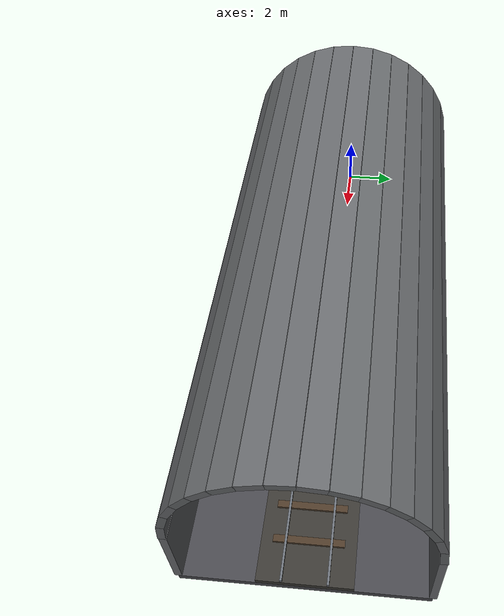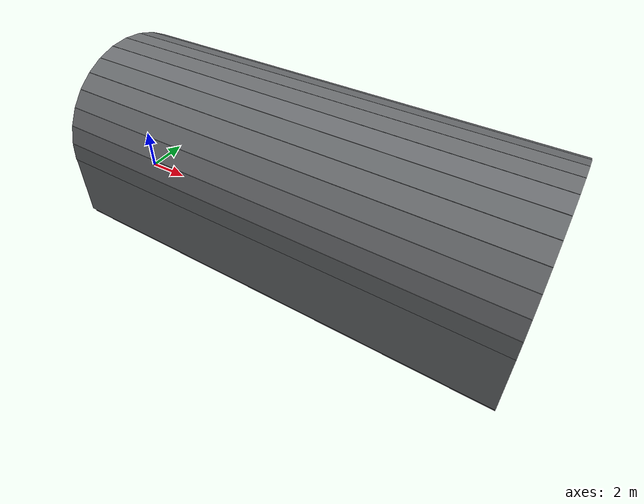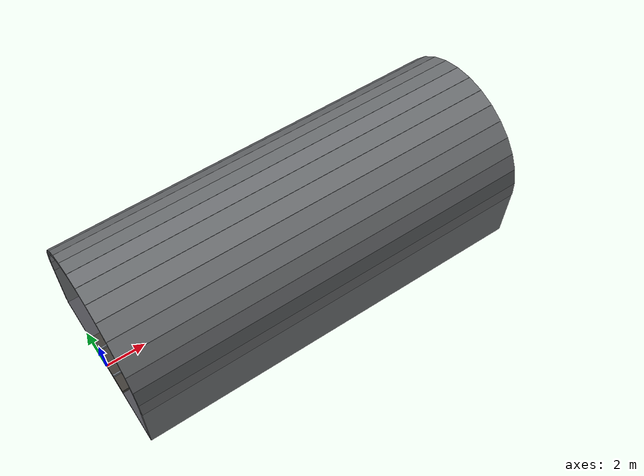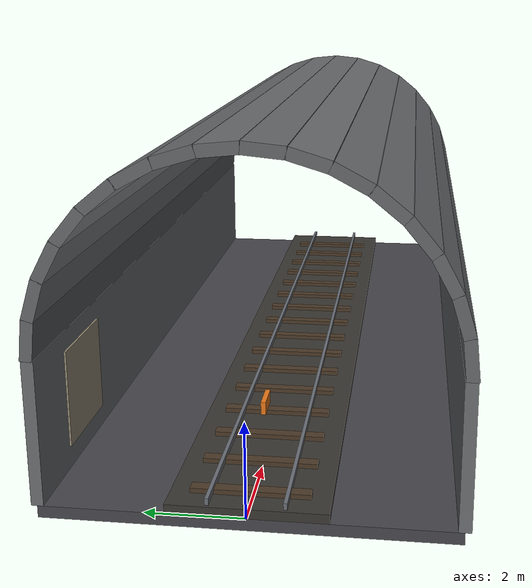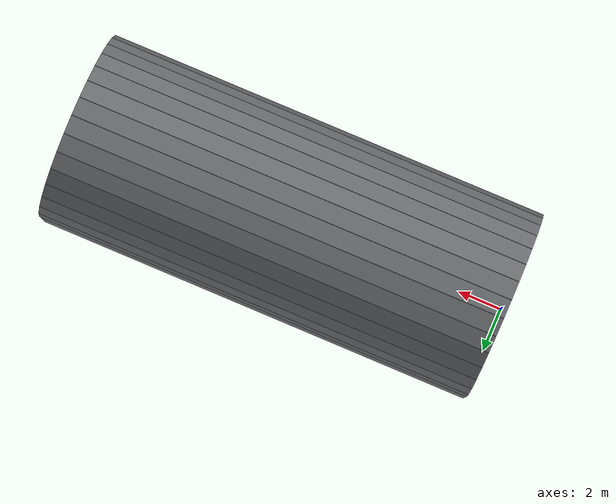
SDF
<?xml version="1.0" ?>
<sdf version="1.9">
  <world name="subway_tunnel_hil">
    <gravity>0 0 -9.81</gravity>
    <physics name="1ms" type="ignored"><max_step_size>0.001</max_step_size><real_time_factor>1.0</real_time_factor></physics>
    <plugin filename="gz-sim-physics-system" name="gz::sim::systems::Physics"/>
    <plugin filename="gz-sim-user-commands-system" name="gz::sim::systems::UserCommands"/>
    <plugin filename="gz-sim-scene-broadcaster-system" name="gz::sim::systems::SceneBroadcaster"/>
    <plugin filename="gz-sim-sensors-system" name="gz::sim::systems::Sensors"><render_engine>ogre2</render_engine></plugin>
    <scene><ambient>0.08 0.08 0.09 1</ambient><background>0.015 0.018 0.022 1</background><shadows>true</shadows></scene>

    <!-- 8 m clear arch span, 4 m radius, 3 m side walls, 20 m length. -->
    <model name="subway_tunnel_shell">
      <static>true</static>
      <link name="floor"><pose>10 0 -0.125 0 0 0</pose><collision name="collision"><geometry><box><size>20 8.25 0.25</size></box></geometry></collision><visual name="visual"><geometry><box><size>20 8.25 0.25</size></box></geometry><material><ambient>0.20 0.20 0.21 1</ambient><diffuse>0.28 0.28 0.30 1</diffuse></material></visual></link>
      <link name="right_straight_wall"><pose>10 4.125 1.5 0 0 0</pose><collision name="collision"><geometry><box><size>20 0.25 3.0</size></box></geometry></collision><visual name="visual"><geometry><box><size>20 0.25 3.0</size></box></geometry><material><ambient>0.34 0.35 0.36 1</ambient><diffuse>0.43 0.44 0.45 1</diffuse></material></visual></link>
      <link name="left_straight_wall"><pose>10 -4.125 1.5 0 0 0</pose><collision name="collision"><geometry><box><size>20 0.25 3.0</size></box></geometry></collision><visual name="visual"><geometry><box><size>20 0.25 3.0</size></box></geometry><material><ambient>0.34 0.35 0.36 1</ambient><diffuse>0.43 0.44 0.45 1</diffuse></material></visual></link>

      <!-- Sixteen collision-backed facets approximate the concrete arch. -->
      <link name="arch_01"><pose>10 4.1051 3.4043 1.668971 0 0</pose><collision name="collision"><geometry><box><size>20 0.82 0.25</size></box></geometry></collision><visual name="visual"><geometry><box><size>20 0.82 0.25</size></box></geometry><material><ambient>0.31 0.32 0.33 1</ambient><diffuse>0.40 0.41 0.42 1</diffuse></material></visual></link>
      <link name="arch_02"><pose>10 3.9474 4.1974 1.865321 0 0</pose><collision name="collision"><geometry><box><size>20 0.82 0.25</size></box></geometry></collision><visual name="visual"><geometry><box><size>20 0.82 0.25</size></box></geometry><material><ambient>0.32 0.33 0.34 1</ambient><diffuse>0.41 0.42 0.43 1</diffuse></material></visual></link>
      <link name="arch_03"><pose>10 3.6379 4.9445 2.061670 0 0</pose><collision name="collision"><geometry><box><size>20 0.82 0.25</size></box></geometry></collision><visual name="visual"><geometry><box><size>20 0.82 0.25</size></box></geometry><material><ambient>0.31 0.32 0.33 1</ambient><diffuse>0.40 0.41 0.42 1</diffuse></material></visual></link>
      <link name="arch_04"><pose>10 3.1887 5.6169 2.258020 0 0</pose><collision name="collision"><geometry><box><size>20 0.82 0.25</size></box></geometry></collision><visual name="visual"><geometry><box><size>20 0.82 0.25</size></box></geometry><material><ambient>0.32 0.33 0.34 1</ambient><diffuse>0.41 0.42 0.43 1</diffuse></material></visual></link>
      <link name="arch_05"><pose>10 2.6169 6.1887 2.454369 0 0</pose><collision name="collision"><geometry><box><size>20 0.82 0.25</size></box></geometry></collision><visual name="visual"><geometry><box><size>20 0.82 0.25</size></box></geometry><material><ambient>0.31 0.32 0.33 1</ambient><diffuse>0.40 0.41 0.42 1</diffuse></material></visual></link>
      <link name="arch_06"><pose>10 1.9445 6.6379 2.650719 0 0</pose><collision name="collision"><geometry><box><size>20 0.82 0.25</size></box></geometry></collision><visual name="visual"><geometry><box><size>20 0.82 0.25</size></box></geometry><material><ambient>0.32 0.33 0.34 1</ambient><diffuse>0.41 0.42 0.43 1</diffuse></material></visual></link>
      <link name="arch_07"><pose>10 1.1974 6.9474 2.847068 0 0</pose><collision name="collision"><geometry><box><size>20 0.82 0.25</size></box></geometry></collision><visual name="visual"><geometry><box><size>20 0.82 0.25</size></box></geometry><material><ambient>0.31 0.32 0.33 1</ambient><diffuse>0.40 0.41 0.42 1</diffuse></material></visual></link>
      <link name="arch_08"><pose>10 0.4043 7.1051 3.043418 0 0</pose><collision name="collision"><geometry><box><size>20 0.82 0.25</size></box></geometry></collision><visual name="visual"><geometry><box><size>20 0.82 0.25</size></box></geometry><material><ambient>0.32 0.33 0.34 1</ambient><diffuse>0.41 0.42 0.43 1</diffuse></material></visual></link>
      <link name="arch_09"><pose>10 -0.4043 7.1051 3.239767 0 0</pose><collision name="collision"><geometry><box><size>20 0.82 0.25</size></box></geometry></collision><visual name="visual"><geometry><box><size>20 0.82 0.25</size></box></geometry><material><ambient>0.31 0.32 0.33 1</ambient><diffuse>0.40 0.41 0.42 1</diffuse></material></visual></link>
      <link name="arch_10"><pose>10 -1.1974 6.9474 3.436117 0 0</pose><collision name="collision"><geometry><box><size>20 0.82 0.25</size></box></geometry></collision><visual name="visual"><geometry><box><size>20 0.82 0.25</size></box></geometry><material><ambient>0.32 0.33 0.34 1</ambient><diffuse>0.41 0.42 0.43 1</diffuse></material></visual></link>
      <link name="arch_11"><pose>10 -1.9445 6.6379 3.632467 0 0</pose><collision name="collision"><geometry><box><size>20 0.82 0.25</size></box></geometry></collision><visual name="visual"><geometry><box><size>20 0.82 0.25</size></box></geometry><material><ambient>0.31 0.32 0.33 1</ambient><diffuse>0.40 0.41 0.42 1</diffuse></material></visual></link>
      <link name="arch_12"><pose>10 -2.6169 6.1887 3.828816 0 0</pose><collision name="collision"><geometry><box><size>20 0.82 0.25</size></box></geometry></collision><visual name="visual"><geometry><box><size>20 0.82 0.25</size></box></geometry><material><ambient>0.32 0.33 0.34 1</ambient><diffuse>0.41 0.42 0.43 1</diffuse></material></visual></link>
      <link name="arch_13"><pose>10 -3.1887 5.6169 4.025166 0 0</pose><collision name="collision"><geometry><box><size>20 0.82 0.25</size></box></geometry></collision><visual name="visual"><geometry><box><size>20 0.82 0.25</size></box></geometry><material><ambient>0.31 0.32 0.33 1</ambient><diffuse>0.40 0.41 0.42 1</diffuse></material></visual></link>
      <link name="arch_14"><pose>10 -3.6379 4.9445 4.221515 0 0</pose><collision name="collision"><geometry><box><size>20 0.82 0.25</size></box></geometry></collision><visual name="visual"><geometry><box><size>20 0.82 0.25</size></box></geometry><material><ambient>0.32 0.33 0.34 1</ambient><diffuse>0.41 0.42 0.43 1</diffuse></material></visual></link>
      <link name="arch_15"><pose>10 -3.9474 4.1974 4.417865 0 0</pose><collision name="collision"><geometry><box><size>20 0.82 0.25</size></box></geometry></collision><visual name="visual"><geometry><box><size>20 0.82 0.25</size></box></geometry><material><ambient>0.31 0.32 0.33 1</ambient><diffuse>0.40 0.41 0.42 1</diffuse></material></visual></link>
      <link name="arch_16"><pose>10 -4.1051 3.4043 4.614214 0 0</pose><collision name="collision"><geometry><box><size>20 0.82 0.25</size></box></geometry></collision><visual name="visual"><geometry><box><size>20 0.82 0.25</size></box></geometry><material><ambient>0.32 0.33 0.34 1</ambient><diffuse>0.41 0.42 0.43 1</diffuse></material></visual></link>

      <!-- Flush wall target for repeatable RANSAC/SVD tests. -->
      <link name="inspection_panel"><pose>2.5 3.97 1.55 0 0 0</pose><collision name="collision"><geometry><box><size>2.0 0.04 2.1</size></box></geometry></collision><visual name="visual"><geometry><box><size>2.0 0.04 2.1</size></box></geometry><material><ambient>0.52 0.48 0.39 1</ambient><diffuse>0.60 0.56 0.47 1</diffuse></material></visual></link>
    </model>

    <model name="track">
      <static>true</static>
      <link name="ballast"><pose>10 0 0.10 0 0 0</pose><collision name="collision"><geometry><box><size>20 3.2 0.20</size></box></geometry></collision><visual name="visual"><geometry><box><size>20 3.2 0.20</size></box></geometry><material><ambient>0.16 0.15 0.14 1</ambient><diffuse>0.23 0.22 0.20 1</diffuse></material></visual></link>
      <link name="rail_right"><pose>10 0.76 0.31 0 0 0</pose><collision name="collision"><geometry><box><size>20 0.075 0.14</size></box></geometry></collision><visual name="visual"><geometry><box><size>20 0.075 0.14</size></box></geometry><material><ambient>0.22 0.23 0.25 1</ambient><diffuse>0.42 0.44 0.47 1</diffuse></material></visual></link>
      <link name="rail_left"><pose>10 -0.76 0.31 0 0 0</pose><collision name="collision"><geometry><box><size>20 0.075 0.14</size></box></geometry></collision><visual name="visual"><geometry><box><size>20 0.075 0.14</size></box></geometry><material><ambient>0.22 0.23 0.25 1</ambient><diffuse>0.42 0.44 0.47 1</diffuse></material></visual></link>
      <link name="sleeper_01"><pose>0.6 0 0.22 0 0 0</pose><visual name="v"><geometry><box><size>0.24 2.4 0.16</size></box></geometry><material><diffuse>0.30 0.23 0.16 1</diffuse></material></visual></link>
      <link name="sleeper_02"><pose>1.8 0 0.22 0 0 0</pose><visual name="v"><geometry><box><size>0.24 2.4 0.16</size></box></geometry><material><diffuse>0.30 0.23 0.16 1</diffuse></material></visual></link>
      <link name="sleeper_03"><pose>3.0 0 0.22 0 0 0</pose><visual name="v"><geometry><box><size>0.24 2.4 0.16</size></box></geometry><material><diffuse>0.30 0.23 0.16 1</diffuse></material></visual></link>
      <link name="sleeper_04"><pose>4.2 0 0.22 0 0 0</pose><visual name="v"><geometry><box><size>0.24 2.4 0.16</size></box></geometry><material><diffuse>0.30 0.23 0.16 1</diffuse></material></visual></link>
      <link name="sleeper_05"><pose>5.4 0 0.22 0 0 0</pose><visual name="v"><geometry><box><size>0.24 2.4 0.16</size></box></geometry><material><diffuse>0.30 0.23 0.16 1</diffuse></material></visual></link>
      <link name="sleeper_06"><pose>6.6 0 0.22 0 0 0</pose><visual name="v"><geometry><box><size>0.24 2.4 0.16</size></box></geometry><material><diffuse>0.30 0.23 0.16 1</diffuse></material></visual></link>
      <link name="sleeper_07"><pose>7.8 0 0.22 0 0 0</pose><visual name="v"><geometry><box><size>0.24 2.4 0.16</size></box></geometry><material><diffuse>0.30 0.23 0.16 1</diffuse></material></visual></link>
      <link name="sleeper_08"><pose>9.0 0 0.22 0 0 0</pose><visual name="v"><geometry><box><size>0.24 2.4 0.16</size></box></geometry><material><diffuse>0.30 0.23 0.16 1</diffuse></material></visual></link>
      <link name="sleeper_09"><pose>10.2 0 0.22 0 0 0</pose><visual name="v"><geometry><box><size>0.24 2.4 0.16</size></box></geometry><material><diffuse>0.30 0.23 0.16 1</diffuse></material></visual></link>
      <link name="sleeper_10"><pose>11.4 0 0.22 0 0 0</pose><visual name="v"><geometry><box><size>0.24 2.4 0.16</size></box></geometry><material><diffuse>0.30 0.23 0.16 1</diffuse></material></visual></link>
      <link name="sleeper_11"><pose>12.6 0 0.22 0 0 0</pose><visual name="v"><geometry><box><size>0.24 2.4 0.16</size></box></geometry><material><diffuse>0.30 0.23 0.16 1</diffuse></material></visual></link>
      <link name="sleeper_12"><pose>13.8 0 0.22 0 0 0</pose><visual name="v"><geometry><box><size>0.24 2.4 0.16</size></box></geometry><material><diffuse>0.30 0.23 0.16 1</diffuse></material></visual></link>
      <link name="sleeper_13"><pose>15.0 0 0.22 0 0 0</pose><visual name="v"><geometry><box><size>0.24 2.4 0.16</size></box></geometry><material><diffuse>0.30 0.23 0.16 1</diffuse></material></visual></link>
      <link name="sleeper_14"><pose>16.2 0 0.22 0 0 0</pose><visual name="v"><geometry><box><size>0.24 2.4 0.16</size></box></geometry><material><diffuse>0.30 0.23 0.16 1</diffuse></material></visual></link>
      <link name="sleeper_15"><pose>17.4 0 0.22 0 0 0</pose><visual name="v"><geometry><box><size>0.24 2.4 0.16</size></box></geometry><material><diffuse>0.30 0.23 0.16 1</diffuse></material></visual></link>
      <link name="sleeper_16"><pose>18.6 0 0.22 0 0 0</pose><visual name="v"><geometry><box><size>0.24 2.4 0.16</size></box></geometry><material><diffuse>0.30 0.23 0.16 1</diffuse></material></visual></link>
    </model>

    <!-- Fixed phase-1 plate; both sensors face the +Y inspection panel. -->
    <model name="dual_lidar_rig">
      <static>true</static>
      <link name="rig_body"><pose>2.5 0 1.25 0 0 0</pose><visual name="visual"><geometry><box><size>0.65 0.10 0.28</size></box></geometry><material><diffuse>0.93 0.48 0.10 1</diffuse></material></visual></link>
      <link name="lidar_1_link">
        <pose>2.75 0 1.25 0 0 1.570796</pose><visual name="body"><geometry><box><size>0.06 0.05 0.05</size></box></geometry><material><diffuse>0.07 0.07 0.07 1</diffuse></material></visual>
        <sensor name="lidar_1" type="gpu_lidar"><topic>/sim/lidar_1/scan</topic><update_rate>10</update_rate><always_on>true</always_on><visualize>true</visualize><ray><scan><horizontal><samples>181</samples><resolution>1</resolution><min_angle>-0.436332</min_angle><max_angle>0.436332</max_angle></horizontal><vertical><samples>81</samples><resolution>1</resolution><min_angle>-0.349066</min_angle><max_angle>0.349066</max_angle></vertical></scan><range><min>0.05</min><max>8.0</max><resolution>0.005</resolution></range><noise><type>gaussian</type><mean>0</mean><stddev>0.003</stddev></noise></ray></sensor>
      </link>
      <link name="lidar_2_link">
        <pose>2.25 0 1.25 0 0 1.570796</pose><visual name="body"><geometry><box><size>0.06 0.05 0.05</size></box></geometry><material><diffuse>0.07 0.07 0.07 1</diffuse></material></visual>
        <sensor name="lidar_2" type="gpu_lidar"><topic>/sim/lidar_2/scan</topic><update_rate>10</update_rate><always_on>true</always_on><visualize>true</visualize><ray><scan><horizontal><samples>181</samples><resolution>1</resolution><min_angle>-0.436332</min_angle><max_angle>0.436332</max_angle></horizontal><vertical><samples>81</samples><resolution>1</resolution><min_angle>-0.349066</min_angle><max_angle>0.349066</max_angle></vertical></scan><range><min>0.05</min><max>8.0</max><resolution>0.005</resolution></range><noise><type>gaussian</type><mean>0</mean><stddev>0.003</stddev></noise></ray></sensor>
      </link>
    </model>

    <light type="point" name="lamp_1"><pose>2.5 0 6.4 0 0 0</pose><diffuse>0.75 0.76 0.70 1</diffuse><attenuation><range>9</range><constant>0.35</constant><linear>0.04</linear><quadratic>0.01</quadratic></attenuation></light>
    <light type="point" name="lamp_2"><pose>7.5 0 6.4 0 0 0</pose><diffuse>0.75 0.76 0.70 1</diffuse><attenuation><range>9</range><constant>0.35</constant><linear>0.04</linear><quadratic>0.01</quadratic></attenuation></light>
    <light type="point" name="lamp_3"><pose>12.5 0 6.4 0 0 0</pose><diffuse>0.75 0.76 0.70 1</diffuse><attenuation><range>9</range><constant>0.35</constant><linear>0.04</linear><quadratic>0.01</quadratic></attenuation></light>
    <light type="point" name="lamp_4"><pose>17.5 0 6.4 0 0 0</pose><diffuse>0.75 0.76 0.70 1</diffuse><attenuation><range>9</range><constant>0.35</constant><linear>0.04</linear><quadratic>0.01</quadratic></attenuation></light>
  </world>
</sdf>
